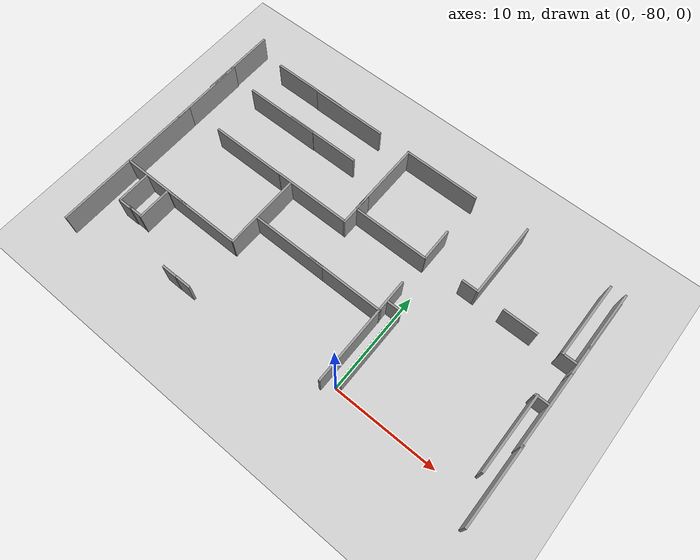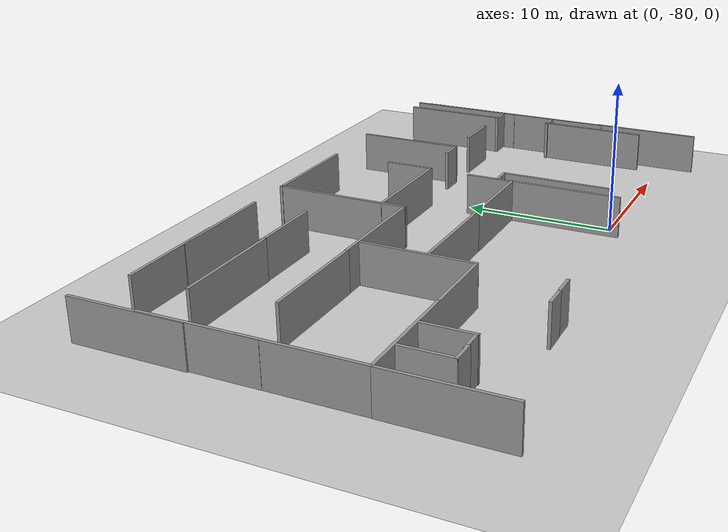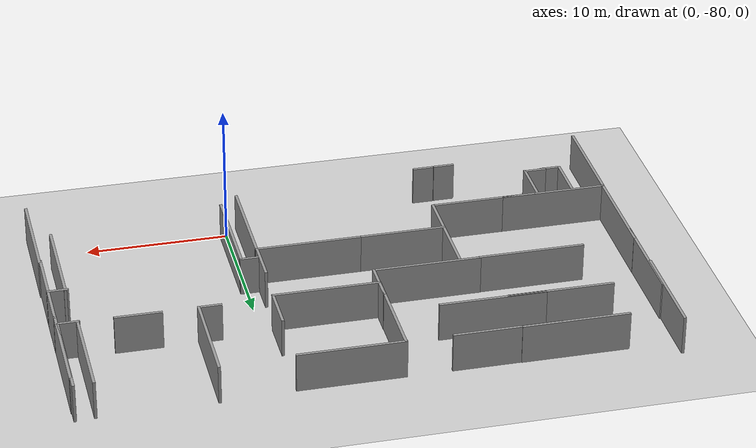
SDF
<sdf version="1.7">
 <world name="default">
  <model name="ground_plane">
   <static>1</static>
   <link name="link">
    <collision name="collision">
     <geometry><plane><normal>0 0 1</normal><size>100 100</size></plane></geometry>
     <surface>
      <contact><collide_bitmask>65535</collide_bitmask></contact>
      <friction><ode><mu>100</mu><mu2>50</mu2></ode></friction>
     </surface>
    </collision>
    <visual name="visual">
     <cast_shadows>0</cast_shadows>
     <geometry><plane><normal>0 0 1</normal><size>100 100</size></plane></geometry>
     <material>
      <script><uri>file://media/materials/scripts/gazebo.material</uri><name>Gazebo/Grey</name></script>
     </material>
    </visual>
   </link>
  </model>
  <model name="grey_wall_1_clone_clone_4_clone">
   <static>1</static>
   <link name="link">
    <pose>0 0 1.4 0 -0 0</pose>
    <collision name="collision"><geometry><box><size>7.5 0.2 2.8</size></box></geometry></collision>
    <visual name="visual">
     <cast_shadows>0</cast_shadows>
     <geometry><box><size>7.5 0.2 2.8</size></box></geometry>
     <material>
      <script>
       <uri>model://grey_wall/materials/scripts</uri>
       <uri>model://grey_wall/materials/textures</uri>
       <name>vrc/grey_wall</name>
      </script>
     </material>
    </visual>
   </link>
   <pose>-19.8686 -59.8137 0 0 -0 0</pose>
  </model>
  <model name="grey_wall_1_clone_clone_4_clone_0">
   <static>1</static>
   <link name="link">
    <pose>0 0 1.4 0 -0 0</pose>
    <collision name="collision"><geometry><box><size>7.5 0.2 2.8</size></box></geometry></collision>
    <visual name="visual">
     <cast_shadows>0</cast_shadows>
     <geometry><box><size>7.5 0.2 2.8</size></box></geometry>
     <material>
      <script>
       <uri>model://grey_wall/materials/scripts</uri>
       <uri>model://grey_wall/materials/textures</uri>
       <name>vrc/grey_wall</name>
      </script>
     </material>
    </visual>
   </link>
   <pose>-19.9143 -63.6749 0 0 -0 0</pose>
  </model>
  <model name="grey_wall_1_clone_clone_4_clone_clone">
   <static>1</static>
   <link name="link">
    <pose>0 0 1.4 0 -0 0</pose>
    <collision name="collision"><geometry><box><size>7.5 0.2 2.8</size></box></geometry></collision>
    <visual name="visual">
     <cast_shadows>0</cast_shadows>
     <geometry><box><size>7.5 0.2 2.8</size></box></geometry>
     <material>
      <script>
       <uri>model://grey_wall/materials/scripts</uri>
       <uri>model://grey_wall/materials/textures</uri>
       <name>vrc/grey_wall</name>
      </script>
     </material>
    </visual>
   </link>
   <pose>-15.1402 -59.8501 0 0 -0 0</pose>
  </model>
  <model name="grey_wall_1_clone_clone_4_clone_clone_0">
   <static>1</static>
   <link name="link">
    <pose>0 0 1.4 0 -0 0</pose>
    <collision name="collision"><geometry><box><size>7.5 0.2 2.8</size></box></geometry></collision>
    <visual name="visual">
     <cast_shadows>0</cast_shadows>
     <geometry><box><size>7.5 0.2 2.8</size></box></geometry>
     <material>
      <script>
       <uri>model://grey_wall/materials/scripts</uri>
       <uri>model://grey_wall/materials/textures</uri>
       <name>vrc/grey_wall</name>
      </script>
     </material>
    </visual>
   </link>
   <pose>-15.176 -63.6367 0 0 -0 0</pose>
  </model>
  <model name="grey_wall_0_clone_0_clone_clone">
   <static>1</static>
   <link name="link">
    <pose>0 0 1.4 0 -0 0</pose>
    <collision name="collision"><geometry><box><size>7.5 0.2 2.8</size></box></geometry></collision>
    <visual name="visual">
     <cast_shadows>0</cast_shadows>
     <geometry><box><size>7.5 0.2 2.8</size></box></geometry>
     <material>
      <script>
       <uri>model://grey_wall/materials/scripts</uri>
       <uri>model://grey_wall/materials/textures</uri>
       <name>vrc/grey_wall</name>
      </script>
     </material>
    </visual>
   </link>
   <pose>-8.20103 -63.5357 0 0 -0 1.5708</pose>
  </model>
  <model name="grey_wall_1_clone_clone_1_clone">
   <static>1</static>
   <link name="link">
    <pose>0 0 1.4 0 -0 0</pose>
    <collision name="collision"><geometry><box><size>7.5 0.2 2.8</size></box></geometry></collision>
    <visual name="visual">
     <cast_shadows>0</cast_shadows>
     <geometry><box><size>7.5 0.2 2.8</size></box></geometry>
     <material>
      <script>
       <uri>model://grey_wall/materials/scripts</uri>
       <uri>model://grey_wall/materials/textures</uri>
       <name>vrc/grey_wall</name>
      </script>
     </material>
    </visual>
   </link>
   <pose>-4.57541 -59.8468 0 0 -0 0</pose>
  </model>
  <model name="grey_wall_1_clone_clone_1_clone_clone">
   <static>1</static>
   <link name="link">
    <pose>0 0 1.4 0 -0 0</pose>
    <collision name="collision"><geometry><box><size>7.5 0.2 2.8</size></box></geometry></collision>
    <visual name="visual">
     <cast_shadows>0</cast_shadows>
     <geometry><box><size>7.5 0.2 2.8</size></box></geometry>
     <material>
      <script>
       <uri>model://grey_wall/materials/scripts</uri>
       <uri>model://grey_wall/materials/textures</uri>
       <name>vrc/grey_wall</name>
      </script>
     </material>
    </visual>
   </link>
   <pose>-4.50296 -67.2771 0 0 -0 0</pose>
  </model>
  <model name="half_grey_wall_clone_clone_0_clone_clone_clone_clone_1_clone_0">
   <link name="link">
    <pose>0 0 1.4 0 -0 0</pose>
    <inertial>
     <mass>1</mass>
     <inertia><ixx>1</ixx><ixy>0</ixy><ixz>0</ixz><iyy>1</iyy><iyz>0</iyz><izz>1</izz></inertia>
    </inertial>
    <visual name="visual">
     <cast_shadows>0</cast_shadows>
     <geometry><box><size>3.3 0.2 2.8</size></box></geometry>
     <material>
      <script>
       <uri>model://grey_wall/materials/scripts</uri>
       <uri>model://grey_wall/materials/textures</uri>
       <name>vrc/grey_wall</name>
      </script>
      <shader type="pixel"><normal_map>__default__</normal_map></shader>
      <ambient>1 1 1 1</ambient>
      <diffuse>1 1 1 1</diffuse>
      <specular>0 0 0 1</specular>
      <emissive>0 0 0 1</emissive>
     </material>
    </visual>
    <collision name="collision">
     <geometry><box><size>3.3 0.2 2.8</size></box></geometry>
     <surface>
      <friction>
       <ode><mu>1</mu><mu2>1</mu2><fdir1>0 0 0</fdir1><slip1>0</slip1><slip2>0</slip2></ode>
       <torsional>
        <coefficient>1</coefficient>
        <patch_radius>0</patch_radius>
        <surface_radius>0</surface_radius>
        <use_patch_radius>1</use_patch_radius>
        <ode><slip>0</slip></ode>
       </torsional>
      </friction>
      <bounce><restitution_coefficient>0</restitution_coefficient><threshold>1e+06</threshold></bounce>
      <contact>
       <collide_without_contact>0</collide_without_contact>
       <collide_without_contact_bitmask>1</collide_without_contact_bitmask>
       <collide_bitmask>1</collide_bitmask>
       <ode>
        <soft_cfm>0</soft_cfm>
        <soft_erp>0.2</soft_erp>
        <kp>1e+13</kp>
        <kd>1</kd>
        <max_vel>0.01</max_vel>
        <min_depth>0</min_depth>
       </ode>
       <bullet>
        <split_impulse>1</split_impulse>
        <split_impulse_penetration_threshold>-0.01</split_impulse_penetration_threshold>
        <soft_cfm>0</soft_cfm>
        <soft_erp>0.2</soft_erp>
        <kp>1e+13</kp>
        <kd>1</kd>
       </bullet>
      </contact>
     </surface>
    </collision>
   </link>
   <static>1</static>
   <pose>-0.836252 -65.6718 -0 0 0 -1.56959</pose>
  </model>
  <model name="half_grey_wall_clone_clone_0_clone_clone_clone_clone_1_clone_1">
   <link name="link">
    <pose>0 0 1.4 0 -0 0</pose>
    <inertial>
     <mass>1</mass>
     <inertia><ixx>1</ixx><ixy>0</ixy><ixz>0</ixz><iyy>1</iyy><iyz>0</iyz><izz>1</izz></inertia>
    </inertial>
    <visual name="visual">
     <cast_shadows>0</cast_shadows>
     <geometry><box><size>3.3 0.2 2.8</size></box></geometry>
     <material>
      <script>
       <uri>model://grey_wall/materials/scripts</uri>
       <uri>model://grey_wall/materials/textures</uri>
       <name>vrc/grey_wall</name>
      </script>
      <shader type="pixel"><normal_map>__default__</normal_map></shader>
      <ambient>1 1 1 1</ambient>
      <diffuse>1 1 1 1</diffuse>
      <specular>0 0 0 1</specular>
      <emissive>0 0 0 1</emissive>
     </material>
    </visual>
    <collision name="collision">
     <geometry><box><size>3.3 0.2 2.8</size></box></geometry>
     <surface>
      <friction>
       <ode><mu>1</mu><mu2>1</mu2><fdir1>0 0 0</fdir1><slip1>0</slip1><slip2>0</slip2></ode>
       <torsional>
        <coefficient>1</coefficient>
        <patch_radius>0</patch_radius>
        <surface_radius>0</surface_radius>
        <use_patch_radius>1</use_patch_radius>
        <ode><slip>0</slip></ode>
       </torsional>
      </friction>
      <bounce><restitution_coefficient>0</restitution_coefficient><threshold>1e+06</threshold></bounce>
      <contact>
       <collide_without_contact>0</collide_without_contact>
       <collide_without_contact_bitmask>1</collide_without_contact_bitmask>
       <collide_bitmask>1</collide_bitmask>
       <ode>
        <soft_cfm>0</soft_cfm>
        <soft_erp>0.2</soft_erp>
        <kp>1e+13</kp>
        <kd>1</kd>
        <max_vel>0.01</max_vel>
        <min_depth>0</min_depth>
       </ode>
       <bullet>
        <split_impulse>1</split_impulse>
        <split_impulse_penetration_threshold>-0.01</split_impulse_penetration_threshold>
        <soft_cfm>0</soft_cfm>
        <soft_erp>0.2</soft_erp>
        <kp>1e+13</kp>
        <kd>1</kd>
       </bullet>
      </contact>
     </surface>
    </collision>
   </link>
   <static>1</static>
   <pose>-8.18017 -67.3391 -0 0 0 -1.56959</pose>
  </model>
  <model name="grey_wall_1_clone_clone_4_clone_0_clone">
   <static>1</static>
   <link name="link">
    <pose>0 0 1.4 0 -0 0</pose>
    <collision name="collision"><geometry><box><size>7.5 0.2 2.8</size></box></geometry></collision>
    <visual name="visual">
     <cast_shadows>0</cast_shadows>
     <geometry><box><size>7.5 0.2 2.8</size></box></geometry>
     <material>
      <script>
       <uri>model://grey_wall/materials/scripts</uri>
       <uri>model://grey_wall/materials/textures</uri>
       <name>vrc/grey_wall</name>
      </script>
     </material>
    </visual>
   </link>
   <pose>-11.9849 -68.8688 0 0 -0 0</pose>
  </model>
  <model name="grey_wall_1_clone_clone_4_clone_0_clone_0">
   <static>1</static>
   <link name="link">
    <pose>0 0 1.4 0 -0 0</pose>
    <collision name="collision"><geometry><box><size>7.5 0.2 2.8</size></box></geometry></collision>
    <visual name="visual">
     <cast_shadows>0</cast_shadows>
     <geometry><box><size>7.5 0.2 2.8</size></box></geometry>
     <material>
      <script>
       <uri>model://grey_wall/materials/scripts</uri>
       <uri>model://grey_wall/materials/textures</uri>
       <name>vrc/grey_wall</name>
      </script>
     </material>
    </visual>
   </link>
   <pose>-19.3618 -68.8993 0 0 -0 0</pose>
  </model>
  <model name="grey_wall_0_clone_0_clone_clone_clone">
   <static>1</static>
   <link name="link">
    <pose>0 0 1.4 0 -0 0</pose>
    <collision name="collision"><geometry><box><size>7.5 0.2 2.8</size></box></geometry></collision>
    <visual name="visual">
     <cast_shadows>0</cast_shadows>
     <geometry><box><size>7.5 0.2 2.8</size></box></geometry>
     <material>
      <script>
       <uri>model://grey_wall/materials/scripts</uri>
       <uri>model://grey_wall/materials/textures</uri>
       <name>vrc/grey_wall</name>
      </script>
     </material>
    </visual>
   </link>
   <pose>-14.2692 -72.7 0 0 -0 1.5708</pose>
  </model>
  <model name="grey_wall_1_clone_clone_4_clone_0_clone_1">
   <static>1</static>
   <link name="link">
    <pose>0 0 1.4 0 -0 0</pose>
    <collision name="collision"><geometry><box><size>7.5 0.2 2.8</size></box></geometry></collision>
    <visual name="visual">
     <cast_shadows>0</cast_shadows>
     <geometry><box><size>7.5 0.2 2.8</size></box></geometry>
     <material>
      <script>
       <uri>model://grey_wall/materials/scripts</uri>
       <uri>model://grey_wall/materials/textures</uri>
       <name>vrc/grey_wall</name>
      </script>
     </material>
    </visual>
   </link>
   <pose>-18.0246 -76.3827 0 0 -0 0</pose>
  </model>
  <model name="grey_wall_1_clone_clone_4_clone_0_clone_2">
   <static>1</static>
   <link name="link">
    <pose>0 0 1.4 0 -0 0</pose>
    <collision name="collision"><geometry><box><size>7.5 0.2 2.8</size></box></geometry></collision>
    <visual name="visual">
     <cast_shadows>0</cast_shadows>
     <geometry><box><size>7.5 0.2 2.8</size></box></geometry>
     <material>
      <script>
       <uri>model://grey_wall/materials/scripts</uri>
       <uri>model://grey_wall/materials/textures</uri>
       <name>vrc/grey_wall</name>
      </script>
     </material>
    </visual>
   </link>
   <pose>-23.1374 -76.3793 0 0 -0 0</pose>
  </model>
  <model name="grey_wall_0_clone_0_clone_clone_0">
   <static>1</static>
   <link name="link">
    <pose>0 0 1.4 0 -0 0</pose>
    <collision name="collision"><geometry><box><size>7.5 0.2 2.8</size></box></geometry></collision>
    <visual name="visual">
     <cast_shadows>0</cast_shadows>
     <geometry><box><size>7.5 0.2 2.8</size></box></geometry>
     <material>
      <script>
       <uri>model://grey_wall/materials/scripts</uri>
       <uri>model://grey_wall/materials/textures</uri>
       <name>vrc/grey_wall</name>
      </script>
     </material>
    </visual>
   </link>
   <pose>-26.839 -72.6432 0 0 -0 1.5708</pose>
  </model>
  <model name="grey_wall_0_clone_0_clone_clone_1">
   <static>1</static>
   <link name="link">
    <pose>0 0 1.4 0 -0 0</pose>
    <collision name="collision"><geometry><box><size>7.5 0.2 2.8</size></box></geometry></collision>
    <visual name="visual">
     <cast_shadows>0</cast_shadows>
     <geometry><box><size>7.5 0.2 2.8</size></box></geometry>
     <material>
      <script>
       <uri>model://grey_wall/materials/scripts</uri>
       <uri>model://grey_wall/materials/textures</uri>
       <name>vrc/grey_wall</name>
      </script>
     </material>
    </visual>
   </link>
   <pose>-26.8502 -66.5433 0 0 -0 1.5708</pose>
  </model>
  <model name="grey_wall_0_clone_0_clone_clone_1_clone">
   <static>1</static>
   <link name="link">
    <pose>0 0 1.4 0 -0 0</pose>
    <collision name="collision"><geometry><box><size>7.5 0.2 2.8</size></box></geometry></collision>
    <visual name="visual">
     <cast_shadows>0</cast_shadows>
     <geometry><box><size>7.5 0.2 2.8</size></box></geometry>
     <material>
      <script>
       <uri>model://grey_wall/materials/scripts</uri>
       <uri>model://grey_wall/materials/textures</uri>
       <name>vrc/grey_wall</name>
      </script>
     </material>
    </visual>
   </link>
   <pose>-26.9395 -62.1634 0 0 -0 1.5708</pose>
  </model>
  <model name="grey_wall_1_clone_clone_4_clone_0_clone_clone">
   <static>1</static>
   <link name="link">
    <pose>0 0 1.4 0 -0 0</pose>
    <collision name="collision"><geometry><box><size>7.5 0.2 2.8</size></box></geometry></collision>
    <visual name="visual">
     <cast_shadows>0</cast_shadows>
     <geometry><box><size>7.5 0.2 2.8</size></box></geometry>
     <material>
      <script>
       <uri>model://grey_wall/materials/scripts</uri>
       <uri>model://grey_wall/materials/textures</uri>
       <name>vrc/grey_wall</name>
      </script>
     </material>
    </visual>
   </link>
   <pose>-10.6175 -73.3508 0 0 -0 0</pose>
  </model>
  <model name="grey_wall_1_clone_clone_4_clone_0_clone_clone_0">
   <static>1</static>
   <link name="link">
    <pose>0 0 1.4 0 -0 0</pose>
    <collision name="collision"><geometry><box><size>7.5 0.2 2.8</size></box></geometry></collision>
    <visual name="visual">
     <cast_shadows>0</cast_shadows>
     <geometry><box><size>7.5 0.2 2.8</size></box></geometry>
     <material>
      <script>
       <uri>model://grey_wall/materials/scripts</uri>
       <uri>model://grey_wall/materials/textures</uri>
       <name>vrc/grey_wall</name>
      </script>
     </material>
    </visual>
   </link>
   <pose>-4.55058 -73.3496 0 0 -0 0</pose>
  </model>
  <model name="half_grey_wall_clone_clone_0_clone_clone_clone_clone_1_clone_0_clone">
   <link name="link">
    <pose>0 0 1.4 0 -0 0</pose>
    <inertial>
     <mass>1</mass>
     <inertia><ixx>1</ixx><ixy>0</ixy><ixz>0</ixz><iyy>1</iyy><iyz>0</iyz><izz>1</izz></inertia>
    </inertial>
    <visual name="visual">
     <cast_shadows>0</cast_shadows>
     <geometry><box><size>3.3 0.2 2.8</size></box></geometry>
     <material>
      <script>
       <uri>model://grey_wall/materials/scripts</uri>
       <uri>model://grey_wall/materials/textures</uri>
       <name>vrc/grey_wall</name>
      </script>
      <shader type="pixel"><normal_map>__default__</normal_map></shader>
      <ambient>1 1 1 1</ambient>
      <diffuse>1 1 1 1</diffuse>
      <specular>0 0 0 1</specular>
      <emissive>0 0 0 1</emissive>
     </material>
    </visual>
    <collision name="collision">
     <geometry><box><size>3.3 0.2 2.8</size></box></geometry>
     <surface>
      <friction>
       <ode><mu>1</mu><mu2>1</mu2><fdir1>0 0 0</fdir1><slip1>0</slip1><slip2>0</slip2></ode>
       <torsional>
        <coefficient>1</coefficient>
        <patch_radius>0</patch_radius>
        <surface_radius>0</surface_radius>
        <use_patch_radius>1</use_patch_radius>
        <ode><slip>0</slip></ode>
       </torsional>
      </friction>
      <bounce><restitution_coefficient>0</restitution_coefficient><threshold>1e+06</threshold></bounce>
      <contact>
       <collide_without_contact>0</collide_without_contact>
       <collide_without_contact_bitmask>1</collide_without_contact_bitmask>
       <collide_bitmask>1</collide_bitmask>
       <ode>
        <soft_cfm>0</soft_cfm>
        <soft_erp>0.2</soft_erp>
        <kp>1e+13</kp>
        <kd>1</kd>
        <max_vel>0.01</max_vel>
        <min_depth>0</min_depth>
       </ode>
       <bullet>
        <split_impulse>1</split_impulse>
        <split_impulse_penetration_threshold>-0.01</split_impulse_penetration_threshold>
        <soft_cfm>0</soft_cfm>
        <soft_erp>0.2</soft_erp>
        <kp>1e+13</kp>
        <kd>1</kd>
       </bullet>
      </contact>
     </surface>
    </collision>
   </link>
   <static>1</static>
   <pose>-0.949801 -71.799 -0 0 0 -1.56959</pose>
  </model>
  <model name="grey_wall_0_clone_0_clone_clone_clone_0">
   <static>1</static>
   <link name="link">
    <pose>0 0 1.4 0 -0 0</pose>
    <collision name="collision"><geometry><box><size>7.5 0.2 2.8</size></box></geometry></collision>
    <visual name="visual">
     <cast_shadows>0</cast_shadows>
     <geometry><box><size>7.5 0.2 2.8</size></box></geometry>
     <material>
      <script>
       <uri>model://grey_wall/materials/scripts</uri>
       <uri>model://grey_wall/materials/textures</uri>
       <name>vrc/grey_wall</name>
      </script>
     </material>
    </visual>
   </link>
   <pose>4.29449 -63.2707 0 0 -0 1.5708</pose>
  </model>
  <model name="half_grey_wall_clone_clone_clone_0_clone_clone_0_clone_clone_0_clone_0_clone_4_clone_0">
   <link name="link">
    <pose>0 0 1.4 0 -0 0</pose>
    <inertial>
     <mass>1</mass>
     <inertia><ixx>1</ixx><ixy>0</ixy><ixz>0</ixz><iyy>1</iyy><iyz>0</iyz><izz>1</izz></inertia>
    </inertial>
    <visual name="visual">
     <cast_shadows>0</cast_shadows>
     <geometry><box><size>1.5 0.2 2.8</size></box></geometry>
     <material>
      <script>
       <uri>model://grey_wall/materials/scripts</uri>
       <uri>model://grey_wall/materials/textures</uri>
       <name>vrc/grey_wall</name>
      </script>
      <shader type="pixel"><normal_map>__default__</normal_map></shader>
      <ambient>1 1 1 1</ambient>
      <diffuse>1 1 1 1</diffuse>
      <specular>0 0 0 1</specular>
      <emissive>0 0 0 1</emissive>
     </material>
    </visual>
    <collision name="collision">
     <geometry><box><size>1.5 0.2 2.8</size></box></geometry>
     <surface>
      <friction>
       <ode><mu>1</mu><mu2>1</mu2><fdir1>0 0 0</fdir1><slip1>0</slip1><slip2>0</slip2></ode>
       <torsional>
        <coefficient>1</coefficient>
        <patch_radius>0</patch_radius>
        <surface_radius>0</surface_radius>
        <use_patch_radius>1</use_patch_radius>
        <ode><slip>0</slip></ode>
       </torsional>
      </friction>
      <bounce><restitution_coefficient>0</restitution_coefficient><threshold>1e+06</threshold></bounce>
      <contact>
       <collide_without_contact>0</collide_without_contact>
       <collide_without_contact_bitmask>1</collide_without_contact_bitmask>
       <collide_bitmask>1</collide_bitmask>
       <ode>
        <soft_cfm>0</soft_cfm>
        <soft_erp>0.2</soft_erp>
        <kp>1e+13</kp>
        <kd>1</kd>
        <max_vel>0.01</max_vel>
        <min_depth>0</min_depth>
       </ode>
       <bullet>
        <split_impulse>1</split_impulse>
        <split_impulse_penetration_threshold>-0.01</split_impulse_penetration_threshold>
        <soft_cfm>0</soft_cfm>
        <soft_erp>0.2</soft_erp>
        <kp>1e+13</kp>
        <kd>1</kd>
       </bullet>
      </contact>
     </surface>
    </collision>
   </link>
   <static>1</static>
   <pose>3.46026 -66.924 0 0 0 -3.13942</pose>
  </model>
  <model name="half_grey_wall_clone_clone_clone_0_clone_clone_0_clone_clone_0_clone_0_clone_4_clone_1">
   <link name="link">
    <pose>0 0 1.4 0 -0 0</pose>
    <inertial>
     <mass>1</mass>
     <inertia><ixx>1</ixx><ixy>0</ixy><ixz>0</ixz><iyy>1</iyy><iyz>0</iyz><izz>1</izz></inertia>
    </inertial>
    <visual name="visual">
     <cast_shadows>0</cast_shadows>
     <geometry><box><size>1.5 0.2 2.8</size></box></geometry>
     <material>
      <script>
       <uri>model://grey_wall/materials/scripts</uri>
       <uri>model://grey_wall/materials/textures</uri>
       <name>vrc/grey_wall</name>
      </script>
      <shader type="pixel"><normal_map>__default__</normal_map></shader>
      <ambient>1 1 1 1</ambient>
      <diffuse>1 1 1 1</diffuse>
      <specular>0 0 0 1</specular>
      <emissive>0 0 0 1</emissive>
     </material>
    </visual>
    <collision name="collision">
     <geometry><box><size>1.5 0.2 2.8</size></box></geometry>
     <surface>
      <friction>
       <ode><mu>1</mu><mu2>1</mu2><fdir1>0 0 0</fdir1><slip1>0</slip1><slip2>0</slip2></ode>
       <torsional>
        <coefficient>1</coefficient>
        <patch_radius>0</patch_radius>
        <surface_radius>0</surface_radius>
        <use_patch_radius>1</use_patch_radius>
        <ode><slip>0</slip></ode>
       </torsional>
      </friction>
      <bounce><restitution_coefficient>0</restitution_coefficient><threshold>1e+06</threshold></bounce>
      <contact>
       <collide_without_contact>0</collide_without_contact>
       <collide_without_contact_bitmask>1</collide_without_contact_bitmask>
       <collide_bitmask>1</collide_bitmask>
       <ode>
        <soft_cfm>0</soft_cfm>
        <soft_erp>0.2</soft_erp>
        <kp>1e+13</kp>
        <kd>1</kd>
        <max_vel>0.01</max_vel>
        <min_depth>0</min_depth>
       </ode>
       <bullet>
        <split_impulse>1</split_impulse>
        <split_impulse_penetration_threshold>-0.01</split_impulse_penetration_threshold>
        <soft_cfm>0</soft_cfm>
        <soft_erp>0.2</soft_erp>
        <kp>1e+13</kp>
        <kd>1</kd>
       </bullet>
      </contact>
     </surface>
    </collision>
   </link>
   <static>1</static>
   <pose>-0.272533 -72.2894 0 0 0 -3.13942</pose>
  </model>
  <model name="grey_wall_0_clone_0_clone_clone_clone_clone">
   <static>1</static>
   <link name="link">
    <pose>0 0 1.4 0 -0 0</pose>
    <collision name="collision"><geometry><box><size>7.5 0.2 2.8</size></box></geometry></collision>
    <visual name="visual">
     <cast_shadows>0</cast_shadows>
     <geometry><box><size>7.5 0.2 2.8</size></box></geometry>
     <material>
      <script>
       <uri>model://grey_wall/materials/scripts</uri>
       <uri>model://grey_wall/materials/textures</uri>
       <name>vrc/grey_wall</name>
      </script>
     </material>
    </visual>
   </link>
   <pose>-0.922733 -77.0946 0 0 -0 1.5708</pose>
  </model>
  <model name="grey_wall_0_clone_0_clone_clone_clone_clone_1">
   <static>1</static>
   <link name="link">
    <pose>0 0 1.4 0 -0 0</pose>
    <collision name="collision"><geometry><box><size>7.5 0.2 2.8</size></box></geometry></collision>
    <visual name="visual">
     <cast_shadows>0</cast_shadows>
     <geometry><box><size>7.5 0.2 2.8</size></box></geometry>
     <material>
      <script>
       <uri>model://grey_wall/materials/scripts</uri>
       <uri>model://grey_wall/materials/textures</uri>
       <name>vrc/grey_wall</name>
      </script>
     </material>
    </visual>
   </link>
   <pose>0.368557 -76.0877 0 0 -0 1.5708</pose>
  </model>
  <model name="half_grey_wall_clone_clone_clone_0_clone_clone_0_clone_clone_0_clone_0_clone_4_clone_1_clone_clone_clone">
   <link name="link">
    <pose>0 0 1.4 0 -0 0</pose>
    <inertial>
     <mass>1</mass>
     <inertia><ixx>1</ixx><ixy>0</ixy><ixz>0</ixz><iyy>1</iyy><iyz>0</iyz><izz>1</izz></inertia>
    </inertial>
    <visual name="visual">
     <cast_shadows>0</cast_shadows>
     <geometry><box><size>1.5 0.2 2.8</size></box></geometry>
     <material>
      <script>
       <uri>model://grey_wall/materials/scripts</uri>
       <uri>model://grey_wall/materials/textures</uri>
       <name>vrc/grey_wall</name>
      </script>
      <shader type="pixel"><normal_map>__default__</normal_map></shader>
      <ambient>1 1 1 1</ambient>
      <diffuse>1 1 1 1</diffuse>
      <specular>0 0 0 1</specular>
      <emissive>0 0 0 1</emissive>
     </material>
    </visual>
    <collision name="collision">
     <geometry><box><size>1.5 0.2 2.8</size></box></geometry>
     <surface>
      <friction>
       <ode><mu>1</mu><mu2>1</mu2><fdir1>0 0 0</fdir1><slip1>0</slip1><slip2>0</slip2></ode>
       <torsional>
        <coefficient>1</coefficient>
        <patch_radius>0</patch_radius>
        <surface_radius>0</surface_radius>
        <use_patch_radius>1</use_patch_radius>
        <ode><slip>0</slip></ode>
       </torsional>
      </friction>
      <bounce><restitution_coefficient>0</restitution_coefficient><threshold>1e+06</threshold></bounce>
      <contact>
       <collide_without_contact>0</collide_without_contact>
       <collide_without_contact_bitmask>1</collide_without_contact_bitmask>
       <collide_bitmask>1</collide_bitmask>
       <ode>
        <soft_cfm>0</soft_cfm>
        <soft_erp>0.2</soft_erp>
        <kp>1e+13</kp>
        <kd>1</kd>
        <max_vel>0.01</max_vel>
        <min_depth>0</min_depth>
       </ode>
       <bullet>
        <split_impulse>1</split_impulse>
        <split_impulse_penetration_threshold>-0.01</split_impulse_penetration_threshold>
        <soft_cfm>0</soft_cfm>
        <soft_erp>0.2</soft_erp>
        <kp>1e+13</kp>
        <kd>1</kd>
       </bullet>
      </contact>
     </surface>
    </collision>
   </link>
   <static>1</static>
   <pose>-14.8826 -81.6822 0 0 0 -3.13942</pose>
  </model>
  <model name="half_grey_wall_clone_clone_clone_0_clone_clone_0_clone_clone_0_clone_0_clone_4_clone_1_clone_clone_clone_clone">
   <link name="link">
    <pose>0 0 1.4 0 -0 0</pose>
    <inertial>
     <mass>1</mass>
     <inertia><ixx>1</ixx><ixy>0</ixy><ixz>0</ixz><iyy>1</iyy><iyz>0</iyz><izz>1</izz></inertia>
    </inertial>
    <visual name="visual">
     <cast_shadows>0</cast_shadows>
     <geometry><box><size>1.5 0.2 2.8</size></box></geometry>
     <material>
      <script>
       <uri>model://grey_wall/materials/scripts</uri>
       <uri>model://grey_wall/materials/textures</uri>
       <name>vrc/grey_wall</name>
      </script>
      <shader type="pixel"><normal_map>__default__</normal_map></shader>
      <ambient>1 1 1 1</ambient>
      <diffuse>1 1 1 1</diffuse>
      <specular>0 0 0 1</specular>
      <emissive>0 0 0 1</emissive>
     </material>
    </visual>
    <collision name="collision">
     <geometry><box><size>1.5 0.2 2.8</size></box></geometry>
     <surface>
      <friction>
       <ode><mu>1</mu><mu2>1</mu2><fdir1>0 0 0</fdir1><slip1>0</slip1><slip2>0</slip2></ode>
       <torsional>
        <coefficient>1</coefficient>
        <patch_radius>0</patch_radius>
        <surface_radius>0</surface_radius>
        <use_patch_radius>1</use_patch_radius>
        <ode><slip>0</slip></ode>
       </torsional>
      </friction>
      <bounce><restitution_coefficient>0</restitution_coefficient><threshold>1e+06</threshold></bounce>
      <contact>
       <collide_without_contact>0</collide_without_contact>
       <collide_without_contact_bitmask>1</collide_without_contact_bitmask>
       <collide_bitmask>1</collide_bitmask>
       <ode>
        <soft_cfm>0</soft_cfm>
        <soft_erp>0.2</soft_erp>
        <kp>1e+13</kp>
        <kd>1</kd>
        <max_vel>0.01</max_vel>
        <min_depth>0</min_depth>
       </ode>
       <bullet>
        <split_impulse>1</split_impulse>
        <split_impulse_penetration_threshold>-0.01</split_impulse_penetration_threshold>
        <soft_cfm>0</soft_cfm>
        <soft_erp>0.2</soft_erp>
        <kp>1e+13</kp>
        <kd>1</kd>
       </bullet>
      </contact>
     </surface>
    </collision>
   </link>
   <static>1</static>
   <pose>-16.4133 -81.7081 0 0 0 -3.13942</pose>
  </model>
  <model name="half_grey_wall_clone_clone_0_clone_clone_clone_clone_1_clone_0_clone_0_clone_clone_0">
   <link name="link">
    <pose>0 0 1.4 0 -0 0</pose>
    <inertial>
     <mass>1</mass>
     <inertia><ixx>1</ixx><ixy>0</ixy><ixz>0</ixz><iyy>1</iyy><iyz>0</iyz><izz>1</izz></inertia>
    </inertial>
    <visual name="visual">
     <cast_shadows>0</cast_shadows>
     <geometry><box><size>3.3 0.2 2.8</size></box></geometry>
     <material>
      <script>
       <uri>model://grey_wall/materials/scripts</uri>
       <uri>model://grey_wall/materials/textures</uri>
       <name>vrc/grey_wall</name>
      </script>
      <shader type="pixel"><normal_map>__default__</normal_map></shader>
      <ambient>1 1 1 1</ambient>
      <diffuse>1 1 1 1</diffuse>
      <specular>0 0 0 1</specular>
      <emissive>0 0 0 1</emissive>
     </material>
    </visual>
    <collision name="collision">
     <geometry><box><size>3.3 0.2 2.8</size></box></geometry>
     <surface>
      <friction>
       <ode><mu>1</mu><mu2>1</mu2><fdir1>0 0 0</fdir1><slip1>0</slip1><slip2>0</slip2></ode>
       <torsional>
        <coefficient>1</coefficient>
        <patch_radius>0</patch_radius>
        <surface_radius>0</surface_radius>
        <use_patch_radius>1</use_patch_radius>
        <ode><slip>0</slip></ode>
       </torsional>
      </friction>
      <bounce><restitution_coefficient>0</restitution_coefficient><threshold>1e+06</threshold></bounce>
      <contact>
       <collide_without_contact>0</collide_without_contact>
       <collide_without_contact_bitmask>1</collide_without_contact_bitmask>
       <collide_bitmask>1</collide_bitmask>
       <ode>
        <soft_cfm>0</soft_cfm>
        <soft_erp>0.2</soft_erp>
        <kp>1e+13</kp>
        <kd>1</kd>
        <max_vel>0.01</max_vel>
        <min_depth>0</min_depth>
       </ode>
       <bullet>
        <split_impulse>1</split_impulse>
        <split_impulse_penetration_threshold>-0.01</split_impulse_penetration_threshold>
        <soft_cfm>0</soft_cfm>
        <soft_erp>0.2</soft_erp>
        <kp>1e+13</kp>
        <kd>1</kd>
       </bullet>
      </contact>
     </surface>
    </collision>
   </link>
   <static>1</static>
   <pose>-24.5517 -78.0891 -0 0 0 -1.56959</pose>
  </model>
  <model name="half_grey_wall_clone_clone_0_clone_clone_clone_clone_1_clone_0_clone_0_clone_clone_1">
   <link name="link">
    <pose>0 0 1.4 0 -0 0</pose>
    <inertial>
     <mass>1</mass>
     <inertia><ixx>1</ixx><ixy>0</ixy><ixz>0</ixz><iyy>1</iyy><iyz>0</iyz><izz>1</izz></inertia>
    </inertial>
    <visual name="visual">
     <cast_shadows>0</cast_shadows>
     <geometry><box><size>3.3 0.2 2.8</size></box></geometry>
     <material>
      <script>
       <uri>model://grey_wall/materials/scripts</uri>
       <uri>model://grey_wall/materials/textures</uri>
       <name>vrc/grey_wall</name>
      </script>
      <shader type="pixel"><normal_map>__default__</normal_map></shader>
      <ambient>1 1 1 1</ambient>
      <diffuse>1 1 1 1</diffuse>
      <specular>0 0 0 1</specular>
      <emissive>0 0 0 1</emissive>
     </material>
    </visual>
    <collision name="collision">
     <geometry><box><size>3.3 0.2 2.8</size></box></geometry>
     <surface>
      <friction>
       <ode><mu>1</mu><mu2>1</mu2><fdir1>0 0 0</fdir1><slip1>0</slip1><slip2>0</slip2></ode>
       <torsional>
        <coefficient>1</coefficient>
        <patch_radius>0</patch_radius>
        <surface_radius>0</surface_radius>
        <use_patch_radius>1</use_patch_radius>
        <ode><slip>0</slip></ode>
       </torsional>
      </friction>
      <bounce><restitution_coefficient>0</restitution_coefficient><threshold>1e+06</threshold></bounce>
      <contact>
       <collide_without_contact>0</collide_without_contact>
       <collide_without_contact_bitmask>1</collide_without_contact_bitmask>
       <collide_bitmask>1</collide_bitmask>
       <ode>
        <soft_cfm>0</soft_cfm>
        <soft_erp>0.2</soft_erp>
        <kp>1e+13</kp>
        <kd>1</kd>
        <max_vel>0.01</max_vel>
        <min_depth>0</min_depth>
       </ode>
       <bullet>
        <split_impulse>1</split_impulse>
        <split_impulse_penetration_threshold>-0.01</split_impulse_penetration_threshold>
        <soft_cfm>0</soft_cfm>
        <soft_erp>0.2</soft_erp>
        <kp>1e+13</kp>
        <kd>1</kd>
       </bullet>
      </contact>
     </surface>
    </collision>
   </link>
   <static>1</static>
   <pose>-21.9824 -78.099 -0 0 0 -1.56959</pose>
  </model>
  <model name="half_grey_wall_clone_clone_clone_0_clone_clone_0_clone_clone_0_clone_0_clone_4_clone_1_clone_clone_clone_clone_0_clone">
   <link name="link">
    <pose>0 0 1.4 0 -0 0</pose>
    <inertial>
     <mass>1</mass>
     <inertia><ixx>1</ixx><ixy>0</ixy><ixz>0</ixz><iyy>1</iyy><iyz>0</iyz><izz>1</izz></inertia>
    </inertial>
    <visual name="visual">
     <cast_shadows>0</cast_shadows>
     <geometry><box><size>1.5 0.2 2.8</size></box></geometry>
     <material>
      <script>
       <uri>model://grey_wall/materials/scripts</uri>
       <uri>model://grey_wall/materials/textures</uri>
       <name>vrc/grey_wall</name>
      </script>
      <shader type="pixel"><normal_map>__default__</normal_map></shader>
      <ambient>1 1 1 1</ambient>
      <diffuse>1 1 1 1</diffuse>
      <specular>0 0 0 1</specular>
      <emissive>0 0 0 1</emissive>
     </material>
    </visual>
    <collision name="collision">
     <geometry><box><size>1.5 0.2 2.8</size></box></geometry>
     <surface>
      <friction>
       <ode><mu>1</mu><mu2>1</mu2><fdir1>0 0 0</fdir1><slip1>0</slip1><slip2>0</slip2></ode>
       <torsional>
        <coefficient>1</coefficient>
        <patch_radius>0</patch_radius>
        <surface_radius>0</surface_radius>
        <use_patch_radius>1</use_patch_radius>
        <ode><slip>0</slip></ode>
       </torsional>
      </friction>
      <bounce><restitution_coefficient>0</restitution_coefficient><threshold>1e+06</threshold></bounce>
      <contact>
       <collide_without_contact>0</collide_without_contact>
       <collide_without_contact_bitmask>1</collide_without_contact_bitmask>
       <collide_bitmask>1</collide_bitmask>
       <ode>
        <soft_cfm>0</soft_cfm>
        <soft_erp>0.2</soft_erp>
        <kp>1e+13</kp>
        <kd>1</kd>
        <max_vel>0.01</max_vel>
        <min_depth>0</min_depth>
       </ode>
       <bullet>
        <split_impulse>1</split_impulse>
        <split_impulse_penetration_threshold>-0.01</split_impulse_penetration_threshold>
        <soft_cfm>0</soft_cfm>
        <soft_erp>0.2</soft_erp>
        <kp>1e+13</kp>
        <kd>1</kd>
       </bullet>
      </contact>
     </surface>
    </collision>
   </link>
   <static>1</static>
   <pose>-22.7738 -79.6169 0 0 0 -3.13942</pose>
  </model>
  <model name="half_grey_wall_clone_clone_clone_0_clone_clone_0_clone_clone_0_clone_0_clone_4_clone_1_clone_clone_clone_clone_0_clone_0">
   <link name="link">
    <pose>0 0 1.4 0 -0 0</pose>
    <inertial>
     <mass>1</mass>
     <inertia><ixx>1</ixx><ixy>0</ixy><ixz>0</ixz><iyy>1</iyy><iyz>0</iyz><izz>1</izz></inertia>
    </inertial>
    <visual name="visual">
     <cast_shadows>0</cast_shadows>
     <geometry><box><size>1.5 0.2 2.8</size></box></geometry>
     <material>
      <script>
       <uri>model://grey_wall/materials/scripts</uri>
       <uri>model://grey_wall/materials/textures</uri>
       <name>vrc/grey_wall</name>
      </script>
      <shader type="pixel"><normal_map>__default__</normal_map></shader>
      <ambient>1 1 1 1</ambient>
      <diffuse>1 1 1 1</diffuse>
      <specular>0 0 0 1</specular>
      <emissive>0 0 0 1</emissive>
     </material>
    </visual>
    <collision name="collision">
     <geometry><box><size>1.5 0.2 2.8</size></box></geometry>
     <surface>
      <friction>
       <ode><mu>1</mu><mu2>1</mu2><fdir1>0 0 0</fdir1><slip1>0</slip1><slip2>0</slip2></ode>
       <torsional>
        <coefficient>1</coefficient>
        <patch_radius>0</patch_radius>
        <surface_radius>0</surface_radius>
        <use_patch_radius>1</use_patch_radius>
        <ode><slip>0</slip></ode>
       </torsional>
      </friction>
      <bounce><restitution_coefficient>0</restitution_coefficient><threshold>1e+06</threshold></bounce>
      <contact>
       <collide_without_contact>0</collide_without_contact>
       <collide_without_contact_bitmask>1</collide_without_contact_bitmask>
       <collide_bitmask>1</collide_bitmask>
       <ode>
        <soft_cfm>0</soft_cfm>
        <soft_erp>0.2</soft_erp>
        <kp>1e+13</kp>
        <kd>1</kd>
        <max_vel>0.01</max_vel>
        <min_depth>0</min_depth>
       </ode>
       <bullet>
        <split_impulse>1</split_impulse>
        <split_impulse_penetration_threshold>-0.01</split_impulse_penetration_threshold>
        <soft_cfm>0</soft_cfm>
        <soft_erp>0.2</soft_erp>
        <kp>1e+13</kp>
        <kd>1</kd>
       </bullet>
      </contact>
     </surface>
    </collision>
   </link>
   <static>1</static>
   <pose>-23.8799 -79.6789 0 0 0 -3.13942</pose>
  </model>
  <model name="grey_wall_0_clone_0_clone_clone_0_clone">
   <static>1</static>
   <link name="link">
    <pose>0 0 1.4 0 -0 0</pose>
    <collision name="collision"><geometry><box><size>7.5 0.2 2.8</size></box></geometry></collision>
    <visual name="visual">
     <cast_shadows>0</cast_shadows>
     <geometry><box><size>7.5 0.2 2.8</size></box></geometry>
     <material>
      <script>
       <uri>model://grey_wall/materials/scripts</uri>
       <uri>model://grey_wall/materials/textures</uri>
       <name>vrc/grey_wall</name>
      </script>
     </material>
    </visual>
   </link>
   <pose>-26.8539 -80.1271 0 0 -0 1.5708</pose>
  </model>
  <model name="grey_wall_0_clone_0_clone_clone_clone_0_clone_clone">
   <static>1</static>
   <link name="link">
    <pose>0 0 1.4 0 -0 0</pose>
    <collision name="collision"><geometry><box><size>7.5 0.2 2.8</size></box></geometry></collision>
    <visual name="visual">
     <cast_shadows>0</cast_shadows>
     <geometry><box><size>7.5 0.2 2.8</size></box></geometry>
     <material>
      <script>
       <uri>model://grey_wall/materials/scripts</uri>
       <uri>model://grey_wall/materials/textures</uri>
       <name>vrc/grey_wall</name>
      </script>
     </material>
    </visual>
   </link>
   <pose>13.9268 -78.6115 0 0 -0 1.5708</pose>
  </model>
  <model name="grey_wall_0_clone_0_clone_clone_clone_0_clone_clone_clone">
   <static>1</static>
   <link name="link">
    <pose>0 0 1.4 0 -0 0</pose>
    <collision name="collision"><geometry><box><size>7.5 0.2 2.8</size></box></geometry></collision>
    <visual name="visual">
     <cast_shadows>0</cast_shadows>
     <geometry><box><size>7.5 0.2 2.8</size></box></geometry>
     <material>
      <script>
       <uri>model://grey_wall/materials/scripts</uri>
       <uri>model://grey_wall/materials/textures</uri>
       <name>vrc/grey_wall</name>
      </script>
     </material>
    </visual>
   </link>
   <pose>13.8512 -71.4242 0 0 -0 1.5708</pose>
  </model>
  <model name="grey_wall_0_clone_0_clone_clone_clone_0_clone_clone_clone_0">
   <static>1</static>
   <link name="link">
    <pose>0 0 1.4 0 -0 0</pose>
    <collision name="collision"><geometry><box><size>7.5 0.2 2.8</size></box></geometry></collision>
    <visual name="visual">
     <cast_shadows>0</cast_shadows>
     <geometry><box><size>7.5 0.2 2.8</size></box></geometry>
     <material>
      <script>
       <uri>model://grey_wall/materials/scripts</uri>
       <uri>model://grey_wall/materials/textures</uri>
       <name>vrc/grey_wall</name>
      </script>
     </material>
    </visual>
   </link>
   <pose>13.8401 -64.1923 0 0 -0 1.5708</pose>
  </model>
  <model name="grey_wall_0_clone_0_clone_clone_clone_0_clone_clone_clone_1">
   <static>1</static>
   <link name="link">
    <pose>0 0 1.4 0 -0 0</pose>
    <collision name="collision"><geometry><box><size>7.5 0.2 2.8</size></box></geometry></collision>
    <visual name="visual">
     <cast_shadows>0</cast_shadows>
     <geometry><box><size>7.5 0.2 2.8</size></box></geometry>
     <material>
      <script>
       <uri>model://grey_wall/materials/scripts</uri>
       <uri>model://grey_wall/materials/textures</uri>
       <name>vrc/grey_wall</name>
      </script>
     </material>
    </visual>
   </link>
   <pose>13.7939 -63.2438 0 0 -0 1.5708</pose>
  </model>
  <model name="half_grey_wall_clone_clone_clone_0_clone_clone_0_clone_clone_0_clone_0_clone_4_clone_0_clone_1">
   <link name="link">
    <pose>0 0 1.4 0 -0 0</pose>
    <inertial>
     <mass>1</mass>
     <inertia><ixx>1</ixx><ixy>0</ixy><ixz>0</ixz><iyy>1</iyy><iyz>0</iyz><izz>1</izz></inertia>
    </inertial>
    <visual name="visual">
     <cast_shadows>0</cast_shadows>
     <geometry><box><size>1.5 0.2 2.8</size></box></geometry>
     <material>
      <script>
       <uri>model://grey_wall/materials/scripts</uri>
       <uri>model://grey_wall/materials/textures</uri>
       <name>vrc/grey_wall</name>
      </script>
      <shader type="pixel"><normal_map>__default__</normal_map></shader>
      <ambient>1 1 1 1</ambient>
      <diffuse>1 1 1 1</diffuse>
      <specular>0 0 0 1</specular>
      <emissive>0 0 0 1</emissive>
     </material>
    </visual>
    <collision name="collision">
     <geometry><box><size>1.5 0.2 2.8</size></box></geometry>
     <surface>
      <friction>
       <ode><mu>1</mu><mu2>1</mu2><fdir1>0 0 0</fdir1><slip1>0</slip1><slip2>0</slip2></ode>
       <torsional>
        <coefficient>1</coefficient>
        <patch_radius>0</patch_radius>
        <surface_radius>0</surface_radius>
        <use_patch_radius>1</use_patch_radius>
        <ode><slip>0</slip></ode>
       </torsional>
      </friction>
      <bounce><restitution_coefficient>0</restitution_coefficient><threshold>1e+06</threshold></bounce>
      <contact>
       <collide_without_contact>0</collide_without_contact>
       <collide_without_contact_bitmask>1</collide_without_contact_bitmask>
       <collide_bitmask>1</collide_bitmask>
       <ode>
        <soft_cfm>0</soft_cfm>
        <soft_erp>0.2</soft_erp>
        <kp>1e+13</kp>
        <kd>1</kd>
        <max_vel>0.01</max_vel>
        <min_depth>0</min_depth>
       </ode>
       <bullet>
        <split_impulse>1</split_impulse>
        <split_impulse_penetration_threshold>-0.01</split_impulse_penetration_threshold>
        <soft_cfm>0</soft_cfm>
        <soft_erp>0.2</soft_erp>
        <kp>1e+13</kp>
        <kd>1</kd>
       </bullet>
      </contact>
     </surface>
    </collision>
   </link>
   <static>1</static>
   <pose>13.0289 -67.0001 0 0 0 -3.13942</pose>
  </model>
  <model name="grey_wall_0_clone_0_clone_clone_clone_0_clone_clone_clone_1_clone">
   <static>1</static>
   <link name="link">
    <pose>0 0 1.4 0 -0 0</pose>
    <collision name="collision"><geometry><box><size>7.5 0.2 2.8</size></box></geometry></collision>
    <visual name="visual">
     <cast_shadows>0</cast_shadows>
     <geometry><box><size>7.5 0.2 2.8</size></box></geometry>
     <material>
      <script>
       <uri>model://grey_wall/materials/scripts</uri>
       <uri>model://grey_wall/materials/textures</uri>
       <name>vrc/grey_wall</name>
      </script>
     </material>
    </visual>
   </link>
   <pose>12.4432 -63.3349 0 0 -0 1.5708</pose>
  </model>
  <model name="grey_wall_0_clone_0_clone_clone_clone_0_clone_clone_clone_1_clone_0">
   <static>1</static>
   <link name="link">
    <pose>0 0 1.4 0 -0 0</pose>
    <collision name="collision"><geometry><box><size>7.5 0.2 2.8</size></box></geometry></collision>
    <visual name="visual">
     <cast_shadows>0</cast_shadows>
     <geometry><box><size>7.5 0.2 2.8</size></box></geometry>
     <material>
      <script>
       <uri>model://grey_wall/materials/scripts</uri>
       <uri>model://grey_wall/materials/textures</uri>
       <name>vrc/grey_wall</name>
      </script>
     </material>
    </visual>
   </link>
   <pose>12.6905 -74.7068 0 0 -0 1.5708</pose>
  </model>
  <model name="half_grey_wall_clone_clone_clone_0_clone_clone_0_clone_clone_0_clone_0_clone_4_clone_0_clone_1_clone">
   <link name="link">
    <pose>0 0 1.4 0 -0 0</pose>
    <inertial>
     <mass>1</mass>
     <inertia><ixx>1</ixx><ixy>0</ixy><ixz>0</ixz><iyy>1</iyy><iyz>0</iyz><izz>1</izz></inertia>
    </inertial>
    <visual name="visual">
     <cast_shadows>0</cast_shadows>
     <geometry><box><size>1.5 0.2 2.8</size></box></geometry>
     <material>
      <script>
       <uri>model://grey_wall/materials/scripts</uri>
       <uri>model://grey_wall/materials/textures</uri>
       <name>vrc/grey_wall</name>
      </script>
      <shader type="pixel"><normal_map>__default__</normal_map></shader>
      <ambient>1 1 1 1</ambient>
      <diffuse>1 1 1 1</diffuse>
      <specular>0 0 0 1</specular>
      <emissive>0 0 0 1</emissive>
     </material>
    </visual>
    <collision name="collision">
     <geometry><box><size>1.5 0.2 2.8</size></box></geometry>
     <surface>
      <friction>
       <ode><mu>1</mu><mu2>1</mu2><fdir1>0 0 0</fdir1><slip1>0</slip1><slip2>0</slip2></ode>
       <torsional>
        <coefficient>1</coefficient>
        <patch_radius>0</patch_radius>
        <surface_radius>0</surface_radius>
        <use_patch_radius>1</use_patch_radius>
        <ode><slip>0</slip></ode>
       </torsional>
      </friction>
      <bounce><restitution_coefficient>0</restitution_coefficient><threshold>1e+06</threshold></bounce>
      <contact>
       <collide_without_contact>0</collide_without_contact>
       <collide_without_contact_bitmask>1</collide_without_contact_bitmask>
       <collide_bitmask>1</collide_bitmask>
       <ode>
        <soft_cfm>0</soft_cfm>
        <soft_erp>0.2</soft_erp>
        <kp>1e+13</kp>
        <kd>1</kd>
        <max_vel>0.01</max_vel>
        <min_depth>0</min_depth>
       </ode>
       <bullet>
        <split_impulse>1</split_impulse>
        <split_impulse_penetration_threshold>-0.01</split_impulse_penetration_threshold>
        <soft_cfm>0</soft_cfm>
        <soft_erp>0.2</soft_erp>
        <kp>1e+13</kp>
        <kd>1</kd>
       </bullet>
      </contact>
     </surface>
    </collision>
   </link>
   <static>1</static>
   <pose>13.2081 -71.0981 0 0 0 -3.13942</pose>
  </model>
  <model name="half_grey_wall_clone_clone_0_clone_clone_clone_clone_2_clone_clone_clone_clone">
   <link name="link">
    <pose>0 0 1.4 0 -0 0</pose>
    <inertial>
     <mass>1</mass>
     <inertia><ixx>1</ixx><ixy>0</ixy><ixz>0</ixz><iyy>1</iyy><iyz>0</iyz><izz>1</izz></inertia>
    </inertial>
    <visual name="visual">
     <cast_shadows>0</cast_shadows>
     <geometry><box><size>3.3 0.2 2.8</size></box></geometry>
     <material>
      <script>
       <uri>model://grey_wall/materials/scripts</uri>
       <uri>model://grey_wall/materials/textures</uri>
       <name>vrc/grey_wall</name>
      </script>
      <shader type="pixel"><normal_map>__default__</normal_map></shader>
      <ambient>1 1 1 1</ambient>
      <diffuse>1 1 1 1</diffuse>
      <specular>0 0 0 1</specular>
      <emissive>0 0 0 1</emissive>
     </material>
    </visual>
    <collision name="collision">
     <geometry><box><size>3.3 0.2 2.8</size></box></geometry>
     <surface>
      <friction>
       <ode><mu>1</mu><mu2>1</mu2><fdir1>0 0 0</fdir1><slip1>0</slip1><slip2>0</slip2></ode>
       <torsional>
        <coefficient>1</coefficient>
        <patch_radius>0</patch_radius>
        <surface_radius>0</surface_radius>
        <use_patch_radius>1</use_patch_radius>
        <ode><slip>0</slip></ode>
       </torsional>
      </friction>
      <bounce><restitution_coefficient>0</restitution_coefficient><threshold>1e+06</threshold></bounce>
      <contact>
       <collide_without_contact>0</collide_without_contact>
       <collide_without_contact_bitmask>1</collide_without_contact_bitmask>
       <collide_bitmask>1</collide_bitmask>
       <ode>
        <soft_cfm>0</soft_cfm>
        <soft_erp>0.2</soft_erp>
        <kp>1e+13</kp>
        <kd>1</kd>
        <max_vel>0.01</max_vel>
        <min_depth>0</min_depth>
       </ode>
       <bullet>
        <split_impulse>1</split_impulse>
        <split_impulse_penetration_threshold>-0.01</split_impulse_penetration_threshold>
        <soft_cfm>0</soft_cfm>
        <soft_erp>0.2</soft_erp>
        <kp>1e+13</kp>
        <kd>1</kd>
       </bullet>
      </contact>
     </surface>
    </collision>
   </link>
   <static>1</static>
   <pose>8.39323 -66.9019 0 0 -0 3.13943</pose>
  </model>
 </world>
</sdf>
